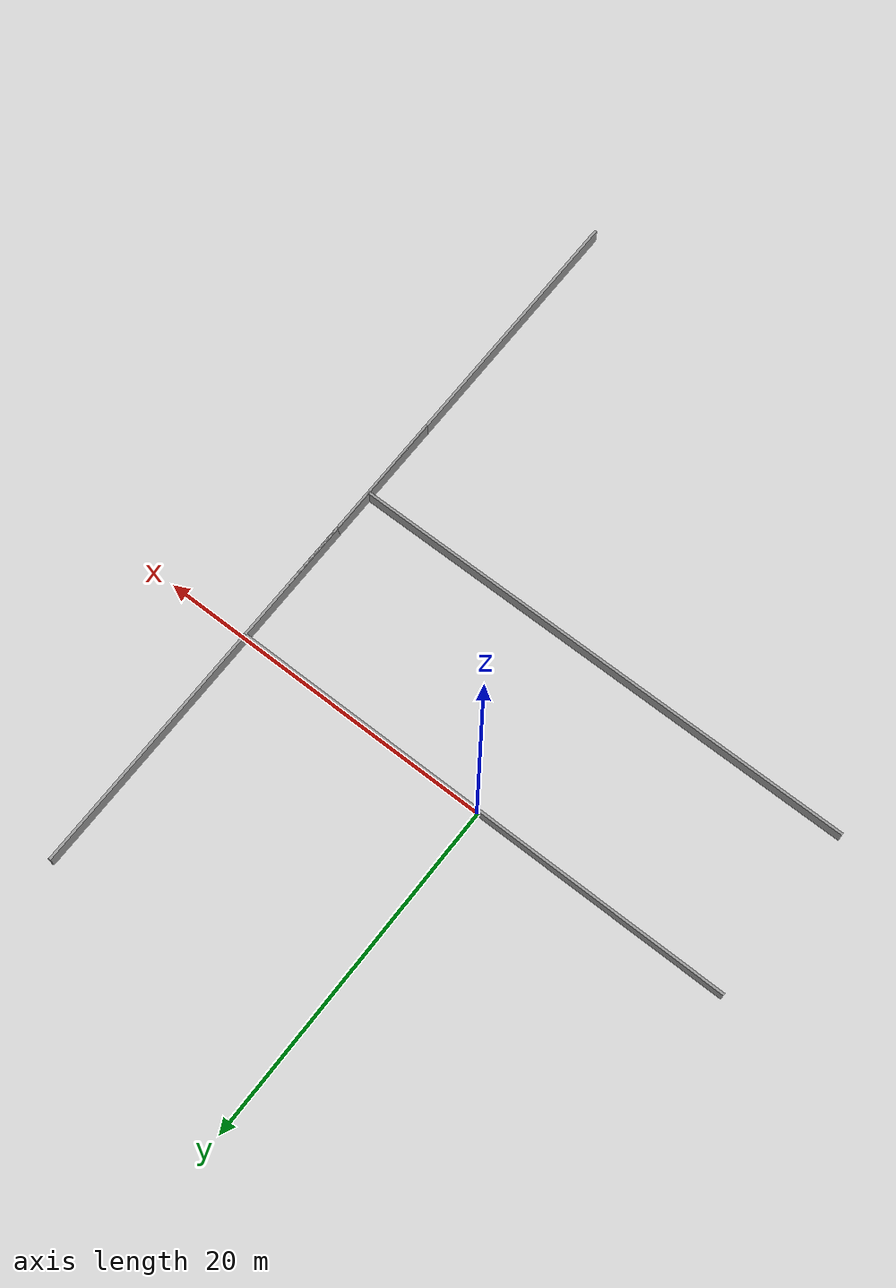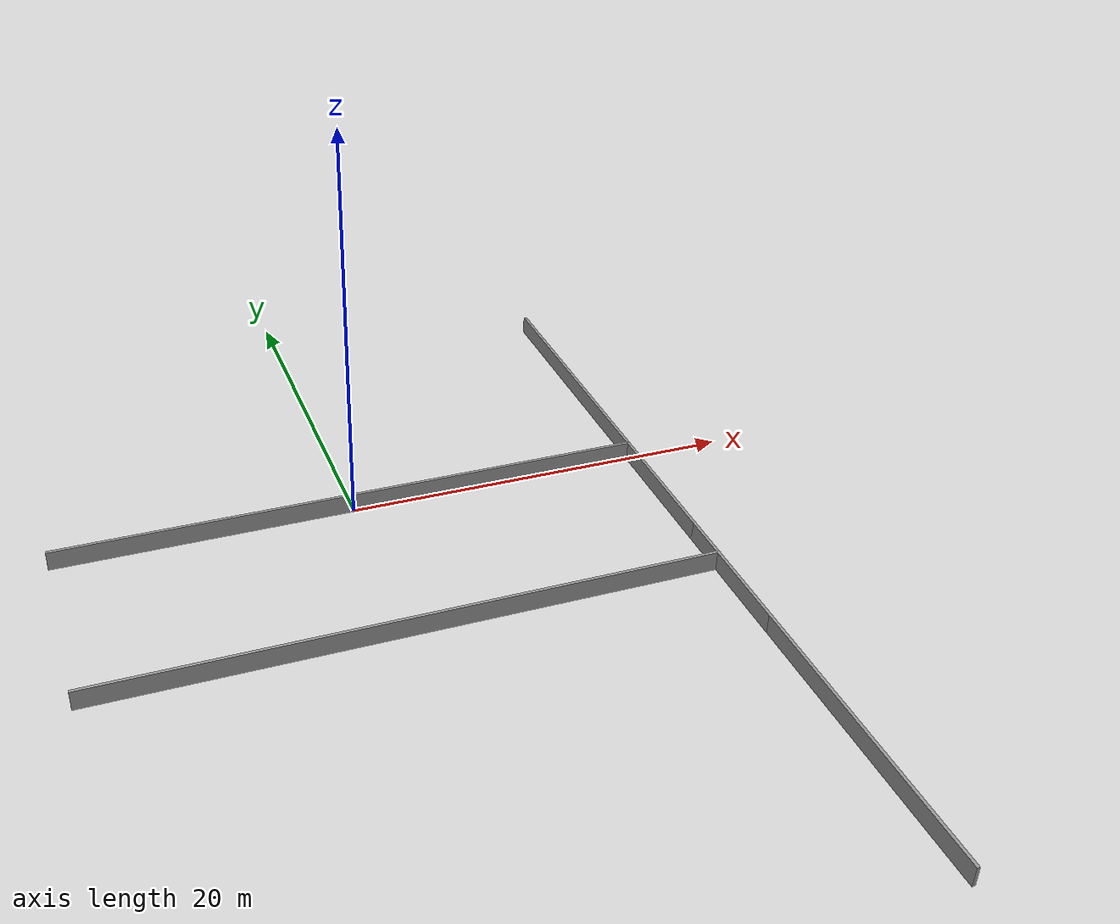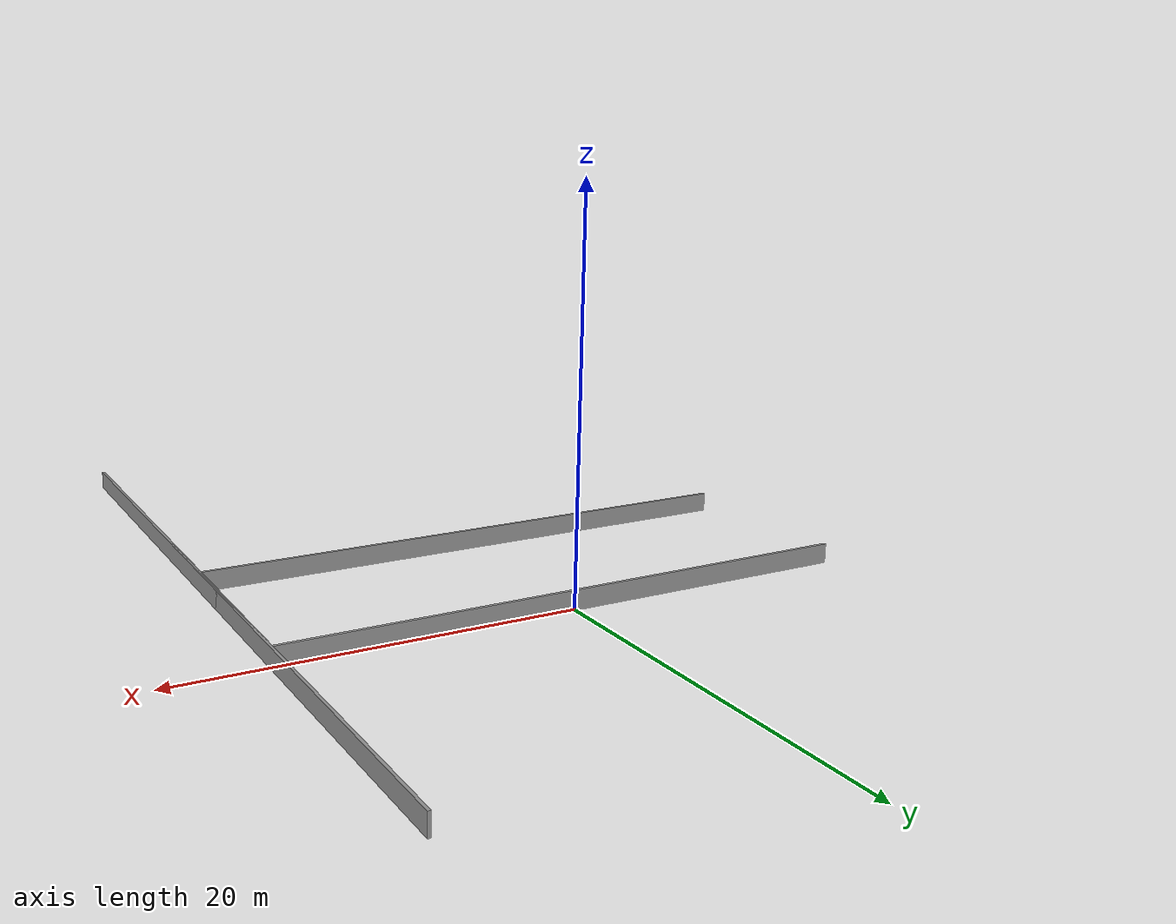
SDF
<?xml version="1.0"?>
<sdf version="1.7">
  <world name="custom_env">
    <physics type="ode">
      <max_step_size>0.003</max_step_size>
      <real_time_factor>1.0</real_time_factor>
    </physics>
    <plugin name='ignition::gazebo::systems::Physics' filename='libignition-gazebo-physics-system.so'/>
    <plugin name='ignition::gazebo::systems::UserCommands' filename='libignition-gazebo-user-commands-system.so'/>
    <plugin name='ignition::gazebo::systems::SceneBroadcaster' filename='libignition-gazebo-scene-broadcaster-system.so'/>

    <scene>
      <ambient>1 1 1 1</ambient>
      <background>0.3 0.7 0.9 1</background>
      <shadows>0</shadows>
      <grid>false</grid>
    </scene>

    <light type="directional" name="sun">
      <cast_shadows>0</cast_shadows>
      <pose>-5 -3 10 0 0 0</pose>
      <diffuse>1 1 1 1</diffuse>
      <specular>1 1 1 1</specular>
      <direction>0 0 -1</direction>
    </light>

    <model name='ground_plane'>
      <static>true</static>
      <link name='link'>
        <collision name='collision'>
          <geometry>
            <plane>
              <normal>0.0 0.0 1</normal>
              <size>1 1</size>
            </plane>
          </geometry>
        </collision>
      </link>
      <pose>0 0 0 0 0 0</pose>
    </model>

    <model name="empty_room">
      <static>true</static>
      <include>
        <uri>model://empty_room</uri>
      </include>
      <pose frame=''>0 0 0  0 0 0</pose>
    </model>
  </world>
</sdf>

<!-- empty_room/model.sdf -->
<sdf version='1.6'>
  <model name='EmptyRoom'>
    <pose frame=''>0.0 0.0 0.0 0.0 0.0 0.0</pose>
    <link name='Wall_1'>
      <collision name='Wall_1_Collision'>
        <geometry>
          <box>
            <size>30 0.15 1</size>
          </box>
        </geometry>
        <pose frame=''>0 0 0.5 0 -0 0</pose>
      </collision>
      <visual name='Wall_1_Visual'>
        <pose frame=''>0 0 0.5 0 -0 0</pose>
        <geometry>
          <box>
            <size>30 0.15 1</size>
          </box>
        </geometry>
        <material>
          <script>
            <uri>file://media/materials/scripts/gazebo.material</uri>
            <name>Gazebo/Grey</name>
          </script>
          <ambient>1 1 1 1</ambient>
        </material>
        <meta>
          <layer>0</layer>
        </meta>
      </visual>
      <pose frame=''>15 0 0 0 -0 -1.5708</pose>
    </link>
    <link name='Wall_2'>
      <collision name='Wall_2_Collision'>
        <geometry>
          <box>
            <size>30 0.15 1</size>
          </box>
        </geometry>
        <pose frame=''>0 0 0.5 0 -0 0</pose>
      </collision>
      <visual name='Wall_2_Visual'>
        <pose frame=''>0 0 0.5 0 -0 0</pose>
        <geometry>
          <box>
            <size>30 0.15 1</size>
          </box>
        </geometry>
        <material>
          <script>
            <uri>file://media/materials/scripts/gazebo.material</uri>
            <name>Gazebo/Grey</name>
          </script>
          <ambient>1 1 1 1</ambient>
        </material>
        <meta>
          <layer>0</layer>
        </meta>
      </visual>
      <pose frame=''>-0 0 0 0 -0 0</pose>
    </link>
    <link name='Wall_3'>
      <collision name='Wall_3_Collision'>
        <geometry>
          <box>
            <size>30 0.15 1</size>
          </box>
        </geometry>
        <pose frame=''>0 -15 0.5 0 -0 0</pose>
      </collision>
      <visual name='Wall_3_Visual'>
        <pose frame=''>0 -15 0.5 0 -0 0</pose>
        <geometry>
          <box>
            <size>30 0.15 1</size>
          </box>
        </geometry>
        <material>
          <script>
            <uri>file://media/materials/scripts/gazebo.material</uri>
            <name>Gazebo/Grey</name>
          </script>
          <ambient>1 1 1 1</ambient>
        </material>
        <meta>
          <layer>0</layer>
        </meta>
      </visual>
      <pose frame=''>0 -15 0 0 -0 1.5708</pose>
    </link>
    <link name='Wall_4'>
      <collision name='Wall_4_Collision'>
        <geometry>
          <box>
            <size>0 0.15 1</size>
          </box>
        </geometry>
        <pose frame=''>0 15 0.5 0 -0 0</pose>
      </collision>
      <visual name='Wall_4_Visual'>
        <pose frame=''>0 15 0.5 0 -0 0</pose>
        <geometry>
          <box>
            <size>30 0.15 1</size>
          </box>
        </geometry>
        <material>
          <script>
            <uri>file://media/materials/scripts/gazebo.material</uri>
            <name>Gazebo/Grey</name>
          </script>
          <ambient>1 1 1 1</ambient>
        </material>
        <meta>
          <layer>0</layer>
        </meta>
      </visual>
      <pose frame=''>-0 4.925 0 0 -0 3.14159</pose>
    </link>
    <static>1</static>
  </model>
</sdf>
